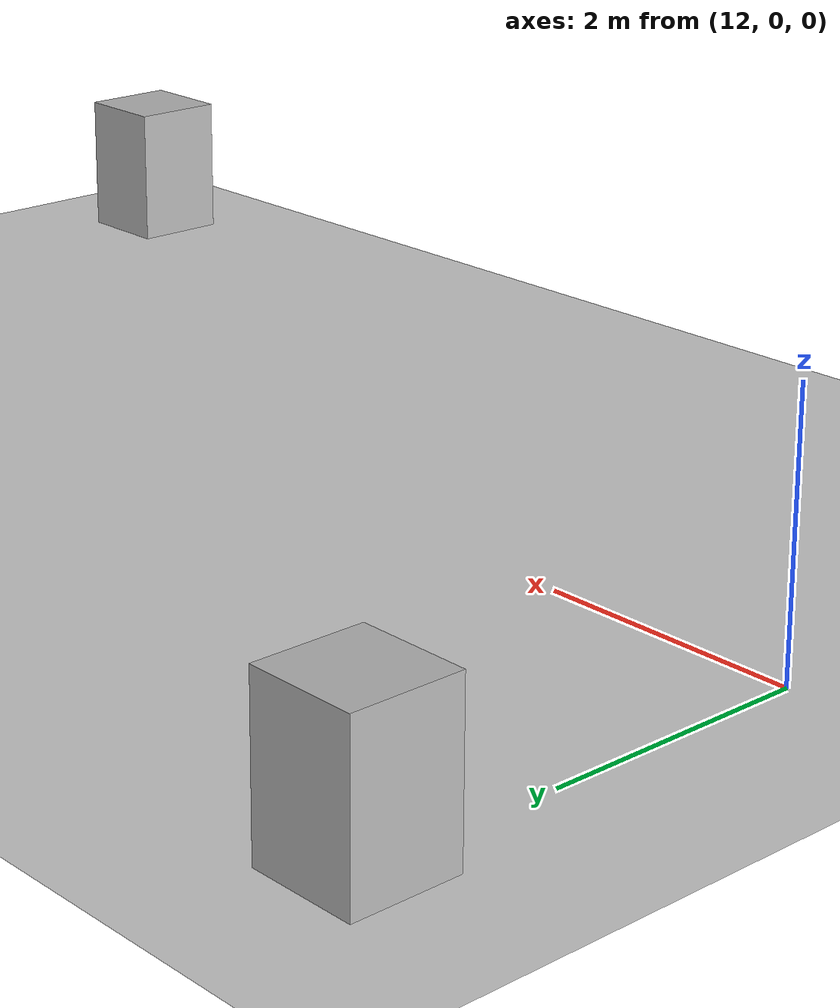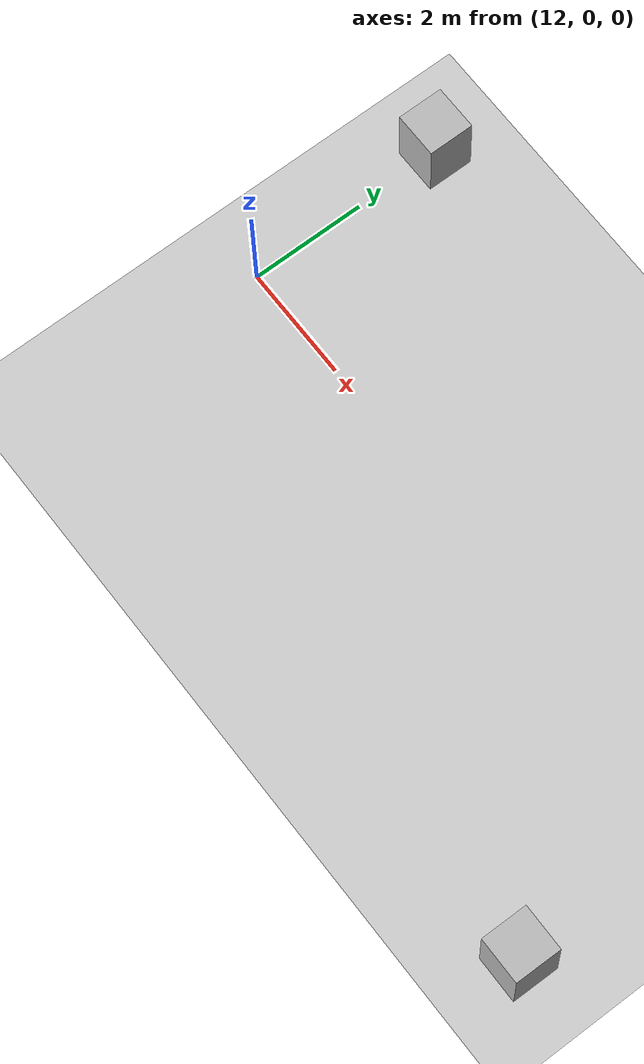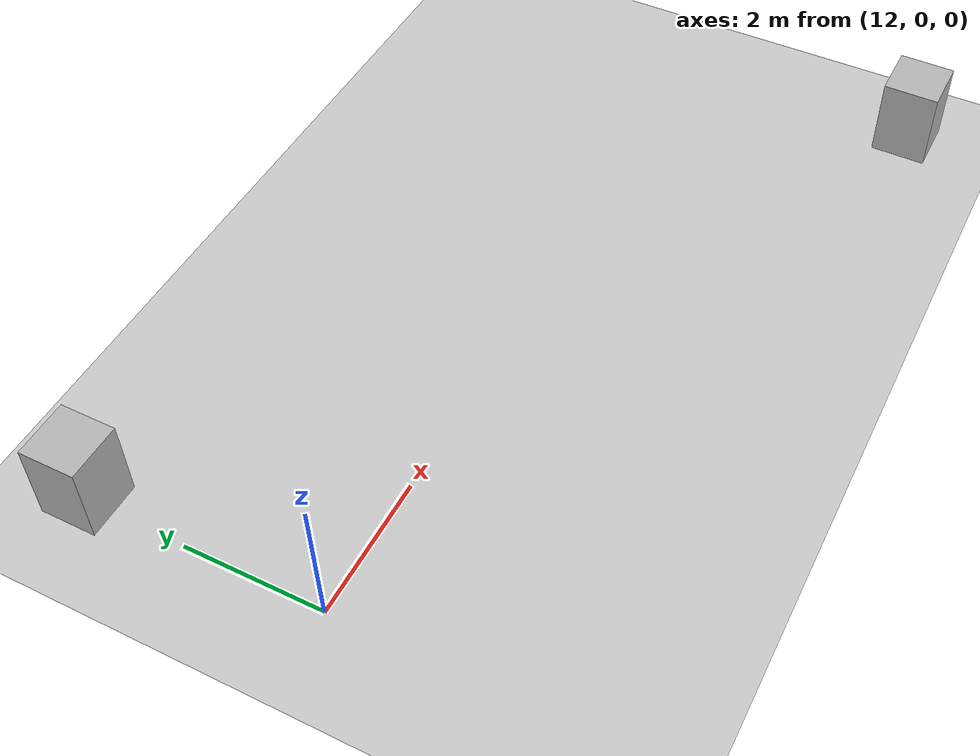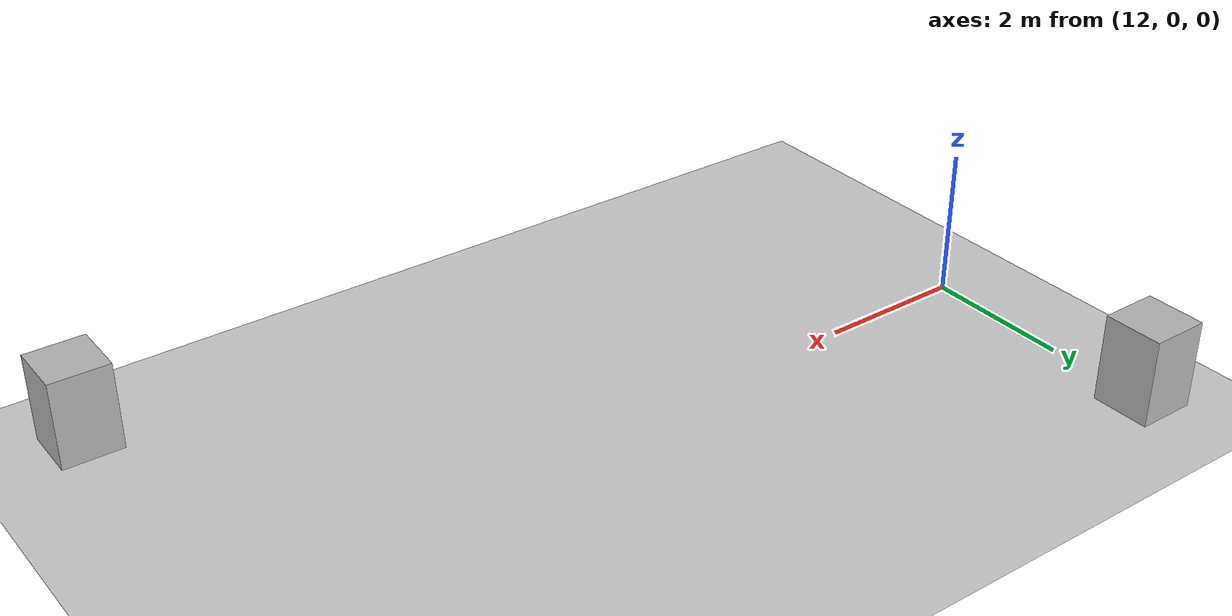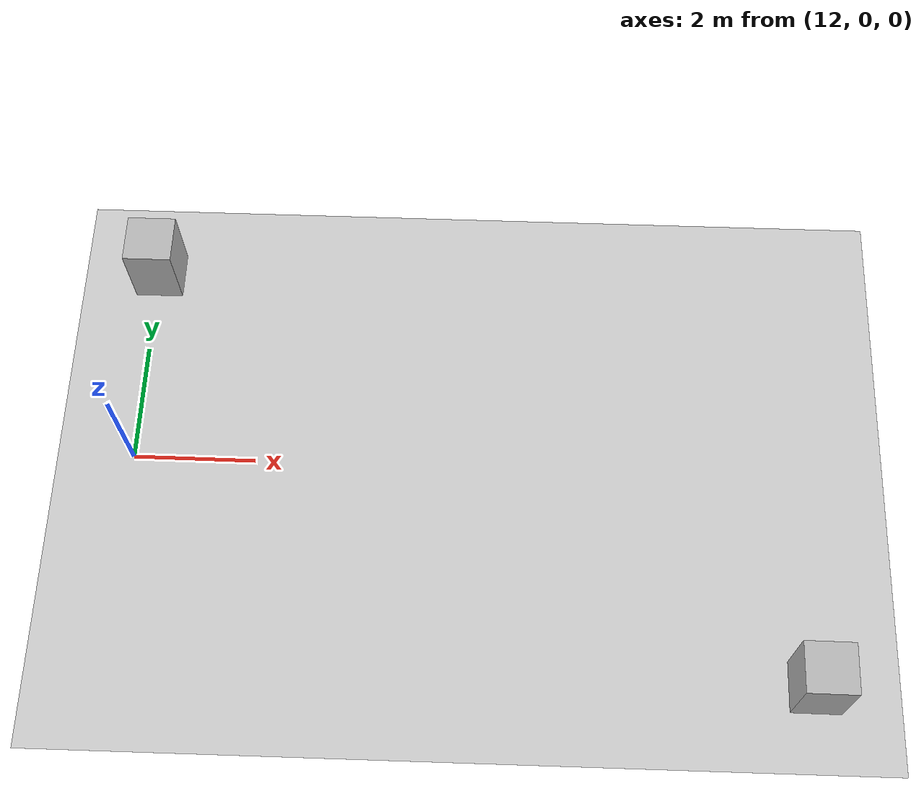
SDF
<?xml version="1.0"?>
<sdf version="1.6">
  <world name="v2-04g-r5-cruise-s5122">
    <gravity>0 0 -9.81</gravity>
    <physics name="v2_deterministic" type="ode">
      <max_step_size>0.002</max_step_size>
      <real_time_update_rate>500</real_time_update_rate>
    </physics>
    <include>
      <uri>model://sun</uri>
    </include>
    <include>
      <uri>model://ground_plane</uri>
    </include>
    <model name="cruise-left">
      <static>true</static>
      <pose>12.043214985 3.470079543 0.600000000 0 0 -0.000281209</pose>
      <link name="link">
        <collision name="collision">
          <geometry>
            <box>
              <size>0.800000 0.800000 1.200000</size>
            </box>
          </geometry>
        </collision>
        <visual name="visual">
          <geometry>
            <box>
              <size>0.800000 0.800000 1.200000</size>
            </box>
          </geometry>
        </visual>
      </link>
    </model>
    <model name="cruise-right">
      <static>true</static>
      <pose>23.001175898 -3.539251871 0.600000000 0 0 -0.007263944</pose>
      <link name="link">
        <collision name="collision">
          <geometry>
            <box>
              <size>0.800000 0.800000 1.200000</size>
            </box>
          </geometry>
        </collision>
        <visual name="visual">
          <geometry>
            <box>
              <size>0.800000 0.800000 1.200000</size>
            </box>
          </geometry>
        </visual>
      </link>
    </model>
  </world>
</sdf>
